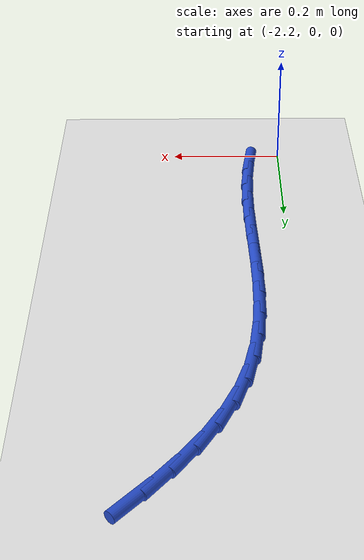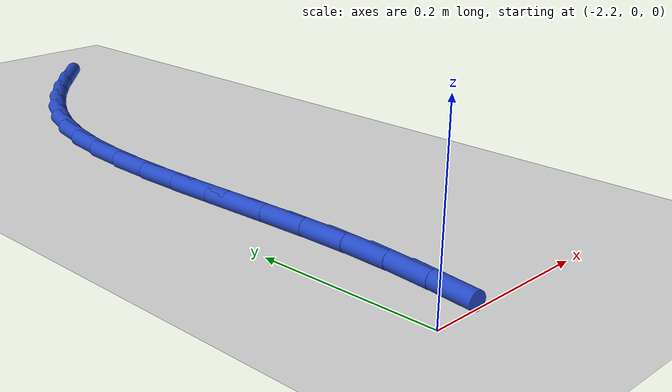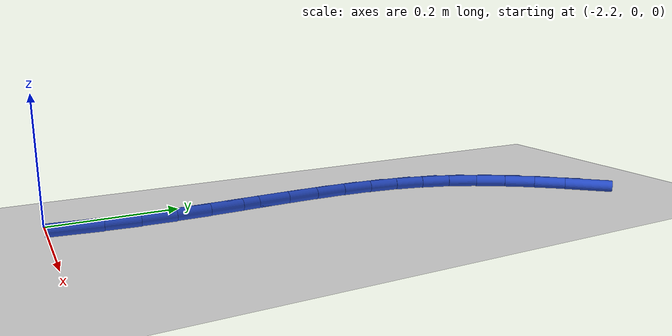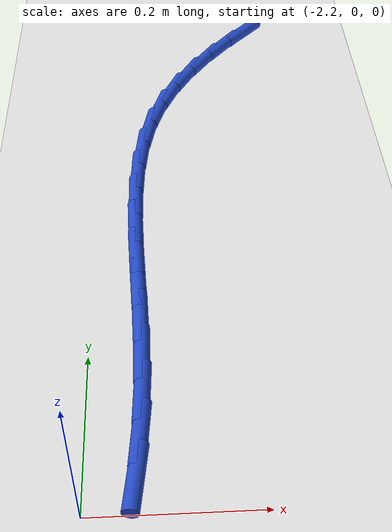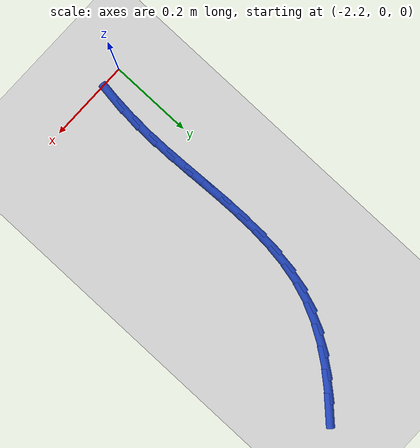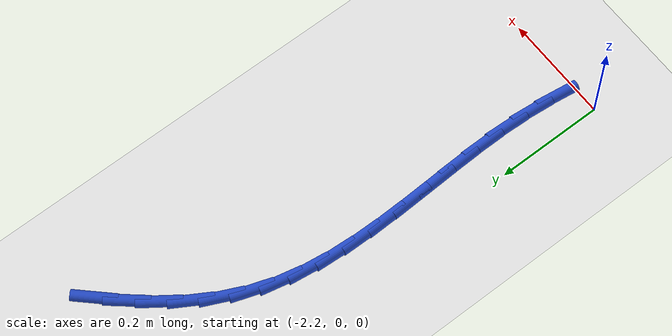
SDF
<sdf version="1.6">
 <world name="default">
  <model name="ground_plane">
   <static>1</static>
   <link name="link">
    <collision name="collision">
     <geometry><plane><normal>0 0 1</normal><size>100 100</size></plane></geometry>
     <surface><friction><ode><mu>100</mu><mu2>50</mu2></ode></friction></surface>
    </collision>
    <visual name="visual">
     <cast_shadows>0</cast_shadows>
     <geometry><plane><normal>0 0 1</normal><size>100 100</size></plane></geometry>
     <material>
      <script><uri>file://media/materials/scripts/gazebo.material</uri><name>Gazebo/WhiteGlow</name></script>
     </material>
    </visual>
   </link>
  </model>
  <model name="line">
   <link name="link_52">
    <pose>-1.9577314790560656 0.8743551269299016 0.01 0 1.57 0.8090259919191154</pose>
    <collision name="collision">
     <geometry><cylinder><radius>0.01</radius><length>0.08</length></cylinder></geometry>
    </collision>
    <visual name="visual">
     <material>
      <script><name>Gazebo/Blue</name><uri>file://media/materials/scripts/gazebo.material</uri></script>
     </material>
     <geometry><cylinder><radius>0.01</radius><length>0.08</length></cylinder></geometry>
    </visual>
   </link>
   <link name="link_53">
    <pose>-1.9949648481953908 0.8353193480133265 0.01 0 1.57 0.8714979208902035</pose>
    <collision name="collision">
     <geometry><cylinder><radius>0.01</radius><length>0.08</length></cylinder></geometry>
    </collision>
    <visual name="visual">
     <material>
      <script><name>Gazebo/Blue</name><uri>file://media/materials/scripts/gazebo.material</uri></script>
     </material>
     <geometry><cylinder><radius>0.01</radius><length>0.08</length></cylinder></geometry>
    </visual>
   </link>
   <link name="link_54">
    <pose>-2.0290996727712893 0.7947353025817376 0.01 0 1.57 0.9461721293149064</pose>
    <collision name="collision">
     <geometry><cylinder><radius>0.01</radius><length>0.08</length></cylinder></geometry>
    </collision>
    <visual name="visual">
     <material>
      <script><name>Gazebo/Blue</name><uri>file://media/materials/scripts/gazebo.material</uri></script>
     </material>
     <geometry><cylinder><radius>0.01</radius><length>0.08</length></cylinder></geometry>
    </visual>
   </link>
   <link name="link_55">
    <pose>-2.059536954723751 0.7525148479065245 0.01 0 1.57 1.0341712876203266</pose>
    <collision name="collision">
     <geometry><cylinder><radius>0.01</radius><length>0.08</length></cylinder></geometry>
    </collision>
    <visual name="visual">
     <material>
      <script><name>Gazebo/Blue</name><uri>file://media/materials/scripts/gazebo.material</uri></script>
     </material>
     <geometry><cylinder><radius>0.01</radius><length>0.08</length></cylinder></geometry>
    </visual>
   </link>
   <link name="link_56">
    <pose>-2.0856776959927656 0.7085698412590772 0.01 0 1.57 1.1361161250300202</pose>
    <collision name="collision">
     <geometry><cylinder><radius>0.01</radius><length>0.08</length></cylinder></geometry>
    </collision>
    <visual name="visual">
     <material>
      <script><name>Gazebo/Blue</name><uri>file://media/materials/scripts/gazebo.material</uri></script>
     </material>
     <geometry><cylinder><radius>0.01</radius><length>0.08</length></cylinder></geometry>
    </visual>
   </link>
   <link name="link_57">
    <pose>-2.106922898518324 0.6628121399107856 0.01 0 1.57 1.2499806652376269</pose>
    <collision name="collision">
     <geometry><cylinder><radius>0.01</radius><length>0.08</length></cylinder></geometry>
    </collision>
    <visual name="visual">
     <material>
      <script><name>Gazebo/Blue</name><uri>file://media/materials/scripts/gazebo.material</uri></script>
     </material>
     <geometry><cylinder><radius>0.01</radius><length>0.08</length></cylinder></geometry>
    </visual>
   </link>
   <link name="link_58">
    <pose>-2.1227528856844984 0.6151737687110339 0.01 0 1.57 1.356681667277702</pose>
    <collision name="collision">
     <geometry><cylinder><radius>0.01</radius><length>0.08</length></cylinder></geometry>
    </collision>
    <visual name="visual">
     <material>
      <script><name>Gazebo/Blue</name><uri>file://media/materials/scripts/gazebo.material</uri></script>
     </material>
     <geometry><cylinder><radius>0.01</radius><length>0.08</length></cylinder></geometry>
    </visual>
   </link>
   <link name="link_59">
    <pose>-2.1334889790903238 0.5658005773744647 0.01 0 1.57 1.4442001895601004</pose>
    <collision name="collision">
     <geometry><cylinder><radius>0.01</radius><length>0.08</length></cylinder></geometry>
    </collision>
    <visual name="visual">
     <material>
      <script><name>Gazebo/Blue</name><uri>file://media/materials/scripts/gazebo.material</uri></script>
     </material>
     <geometry><cylinder><radius>0.01</radius><length>0.08</length></cylinder></geometry>
    </visual>
   </link>
   <link name="link_60">
    <pose>-2.1399588930566726 0.5149671666089919 0.01 0 1.57 1.5124511974653672</pose>
    <collision name="collision">
     <geometry><cylinder><radius>0.01</radius><length>0.08</length></cylinder></geometry>
    </collision>
    <visual name="visual">
     <material>
      <script><name>Gazebo/Blue</name><uri>file://media/materials/scripts/gazebo.material</uri></script>
     </material>
     <geometry><cylinder><radius>0.01</radius><length>0.08</length></cylinder></geometry>
    </visual>
   </link>
   <link name="link_61">
    <pose>-2.1429972954216017 0.4629499050631125 0.01 0 1.57 1.5624533793194062</pose>
    <collision name="collision">
     <geometry><cylinder><radius>0.01</radius><length>0.08</length></cylinder></geometry>
    </collision>
    <visual name="visual">
     <material>
      <script><name>Gazebo/Blue</name><uri>file://media/materials/scripts/gazebo.material</uri></script>
     </material>
     <geometry><cylinder><radius>0.01</radius><length>0.08</length></cylinder></geometry>
    </visual>
   </link>
   <link name="link_62">
    <pose>-2.143438854023169 0.41002516138532413 0.01 0 1.57 -1.5461426320589489</pose>
    <collision name="collision">
     <geometry><cylinder><radius>0.01</radius><length>0.08</length></cylinder></geometry>
    </collision>
    <visual name="visual">
     <material>
      <script><name>Gazebo/Blue</name><uri>file://media/materials/scripts/gazebo.material</uri></script>
     </material>
     <geometry><cylinder><radius>0.01</radius><length>0.08</length></cylinder></geometry>
    </visual>
   </link>
   <link name="link_63">
    <pose>-2.1421182366994294 0.35646930422412326 0.01 0 1.57 -1.529119485078104</pose>
    <collision name="collision">
     <geometry><cylinder><radius>0.01</radius><length>0.08</length></cylinder></geometry>
    </collision>
    <visual name="visual">
     <material>
      <script><name>Gazebo/Blue</name><uri>file://media/materials/scripts/gazebo.material</uri></script>
     </material>
     <geometry><cylinder><radius>0.01</radius><length>0.08</length></cylinder></geometry>
    </visual>
   </link>
   <link name="link_64">
    <pose>-2.1398701112884395 0.30255870222800757 0.01 0 1.57 -1.527463403814393</pose>
    <collision name="collision">
     <geometry><cylinder><radius>0.01</radius><length>0.08</length></cylinder></geometry>
    </collision>
    <visual name="visual">
     <material>
      <script><name>Gazebo/Blue</name><uri>file://media/materials/scripts/gazebo.material</uri></script>
     </material>
     <geometry><cylinder><radius>0.01</radius><length>0.08</length></cylinder></geometry>
    </visual>
   </link>
   <link name="link_65">
    <pose>-2.1375291456282564 0.2485697240454738 0.01 0 1.57 -1.5410763431459489</pose>
    <collision name="collision">
     <geometry><cylinder><radius>0.01</radius><length>0.08</length></cylinder></geometry>
    </collision>
    <visual name="visual">
     <material>
      <script><name>Gazebo/Blue</name><uri>file://media/materials/scripts/gazebo.material</uri></script>
     </material>
     <geometry><cylinder><radius>0.01</radius><length>0.08</length></cylinder></geometry>
    </visual>
   </link>
   <link name="link_66">
    <pose>-2.1359300075569356 0.19477873832501866 0.01 0 1.57 -1.570371644189685</pose>
    <collision name="collision">
     <geometry><cylinder><radius>0.01</radius><length>0.08</length></cylinder></geometry>
    </collision>
    <visual name="visual">
     <material>
      <script><name>Gazebo/Blue</name><uri>file://media/materials/scripts/gazebo.material</uri></script>
     </material>
     <geometry><cylinder><radius>0.01</radius><length>0.08</length></cylinder></geometry>
    </visual>
   </link>
   <link name="link_67">
    <pose>-2.135907364912534 0.14146211371514006 0.01 0 1.57 1.5259237822704175</pose>
    <collision name="collision">
     <geometry><cylinder><radius>0.01</radius><length>0.08</length></cylinder></geometry>
    </collision>
    <visual name="visual">
     <material>
      <script><name>Gazebo/Blue</name><uri>file://media/materials/scripts/gazebo.material</uri></script>
     </material>
     <geometry><cylinder><radius>0.01</radius><length>0.08</length></cylinder></geometry>
    </visual>
   </link>
   <link name="link_68">
    <pose>-2.1382681311447023 0.08888694684601181 0.01 0 1.57 1.476589265037115</pose>
    <collision name="collision">
     <geometry><cylinder><radius>0.01</radius><length>0.08</length></cylinder></geometry>
    </collision>
    <visual name="visual">
     <material>
      <script><name>Gazebo/Blue</name><uri>file://media/materials/scripts/gazebo.material</uri></script>
     </material>
     <geometry><cylinder><radius>0.01</radius><length>0.08</length></cylinder></geometry>
    </visual>
   </link>
   <link name="link_69">
    <pose>-2.1431612615686846 0.037100527671166 0.01 0 1.57 1.436666405462536</pose>
    <collision name="collision">
     <geometry><cylinder><radius>0.01</radius><length>0.08</length></cylinder></geometry>
    </collision>
    <visual name="visual">
     <material>
      <script><name>Gazebo/Blue</name><uri>file://media/materials/scripts/gazebo.material</uri></script>
     </material>
     <geometry><cylinder><radius>0.01</radius><length>0.08</length></cylinder></geometry>
    </visual>
   </link>
  </model>
 </world>
</sdf>
